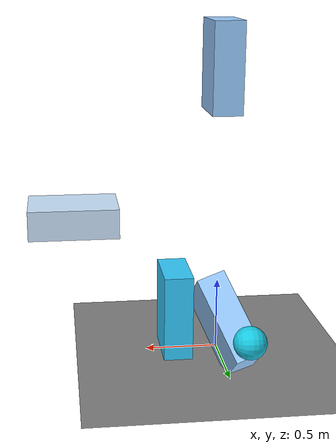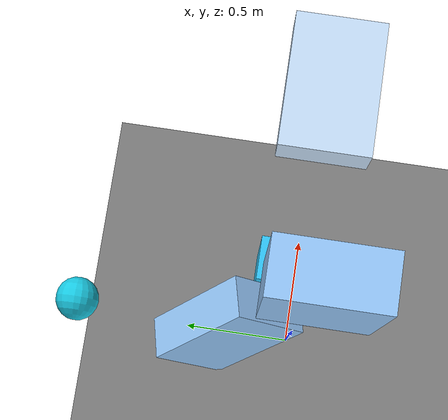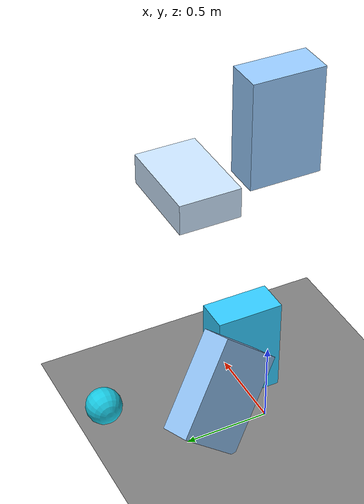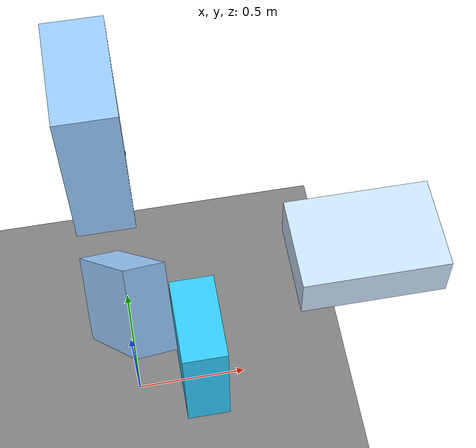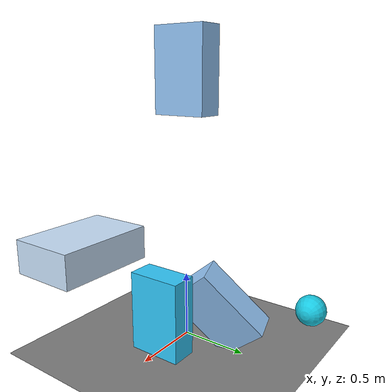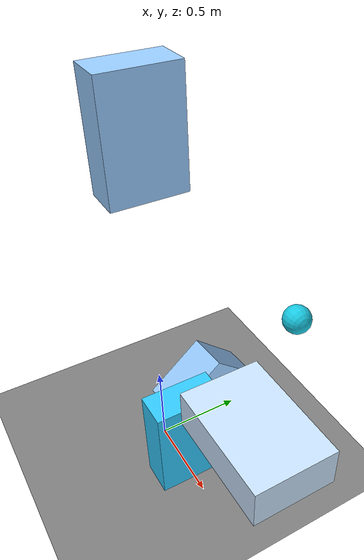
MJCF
<mujoco>
    <option gravity="0 0 -9.81"/>   <!-- explicit, same as default -->
    <asset>
        <texture name="grid" type="2d" builtin="checker"
                 rgb1="0.1 0.1 0.1" rgb2="0.9 0.9 0.9"
                 width="300" height="300"/>
        <material name="grid_mat" texture="grid" texrepeat="5 5"/>
    </asset>

    <worldbody>
        <light diffuse=".5 .5 .5" pos="0 0 3" dir="0 0 -1"/>
        <geom type="plane" size="1 1 0.1"  material="grid_mat"/>

        <body pos="0 0 2">
            <joint type="free"/>
            <geom type="box" size=".1 .2 .3" rgba=".6 .8 1 1"/>
        </body>

        <body pos="1 0 1">
            <joint type="free"/>
            <geom type="box" size=".3 .2 .1" rgba=".8 .9 1 1"/>
        </body>

        <body pos="0 .3 .3" euler="40 20 0">
            <joint type="free"/>
            <geom type="box" size=".1 .2 .3" rgba=".6 .8 1 1"/>
        </body>

        <body pos=".3 0 .3">
            <joint type="free"/>
            <geom type="box" size=".1 .2 .3" rgba=".2 .8 1 1"/>
        </body>

        <body pos="0 1 .5" euler="0 90 0">
            <joint type="free"/>
            <geom type="sphere" size=".1 .2 .3" rgba=".1 .8 .9 1"/>
        </body>

    </worldbody>
</mujoco>
